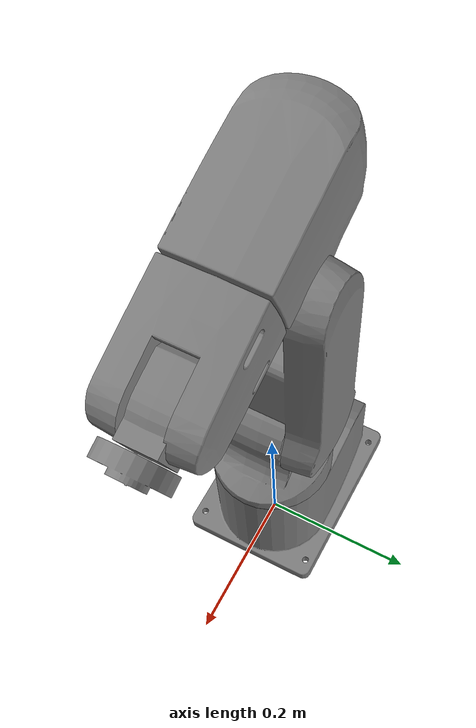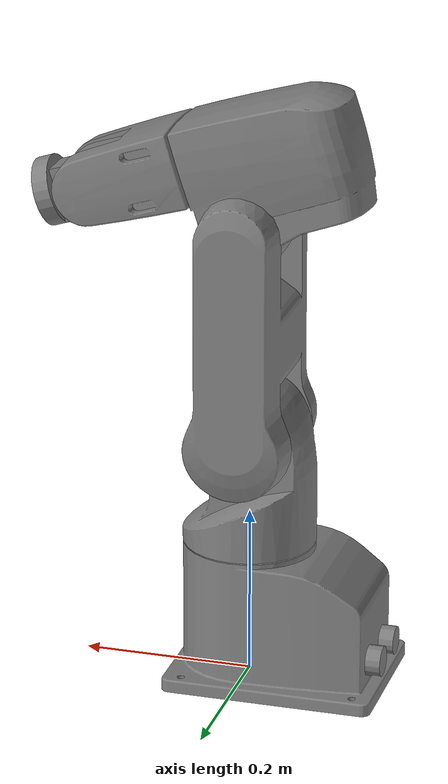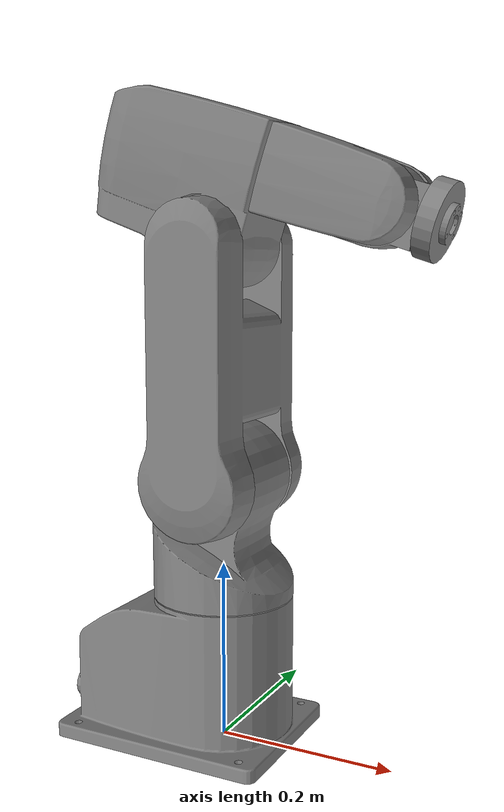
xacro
<?xml version="1.0"?>
<robot xmlns:xacro="http://www.ros.org/wiki/xacro" name="mrv1a">

    <!-- Enable setting arguments from the launch file -->
    <xacro:arg name="use_sim" default="false" />
    <xacro:arg name="use_fake_hardware" default="true" />
    <xacro:arg name="prefix" default="" />
    <xacro:arg name="robot_ip" default="192.168.122.200" />
    <xacro:arg name="robot_port" default="10000" />
    <xacro:arg name="initial_positions_file" default="initial_positions.yaml" />

    <!-- Import mrv1a urdf file -->
    <xacro:include filename="$(find mrv1a_description)/urdf/mrv1a.urdf.xacro" />

    <!-- Import mrv1a ros2_control description -->
    <xacro:include filename="$(find mrv1a_description)/ros2_control/mrv1a.r2c_hardware.xacro" />

    <!-- Import all Gazebo-customization elements -->
    <xacro:include filename="$(find mrv1a_description)/gazebo/mrv1a.gazebo"/>

    <!-- Used for fixing robot -->
    <link name="world"/>
    <gazebo reference="world">
        <static>true</static>
    </gazebo>

    <xacro:mrv1a parent="world" prefix="$(arg prefix)">
        <origin xyz="0 0 0" rpy="0 0 0" />
    </xacro:mrv1a>

    <xacro:mrv1a_r2c_hardware
        name="mrv1aRobot" prefix="$(arg prefix)"
        robot_ip="$(arg robot_ip)" robot_port="$(arg robot_port)"
        initial_positions_file="$(arg initial_positions_file)"
        use_sim="$(arg use_sim)" use_fake_hardware="$(arg use_fake_hardware)"
        />
</robot>

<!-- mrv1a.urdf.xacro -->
<robot xmlns:xacro="http://www.ros.org/wiki/xacro">

  <xacro:macro name="mrv1a" params="parent prefix *origin">

    <material name="gray">
      <color rgba="0.5 0.5 0.5 1.0"/>
    </material>

    <link name="${prefix}mrv1a_base">
        <visual>
          <origin rpy="0 0 0" xyz="0 0 0"/>
          <geometry>
            <mesh filename="package://mrv1a_description/meshes/body1_0.stl" scale="0.001 0.001 0.001"/>
          </geometry>
          <material name="gray"/>
        </visual>
        <collision>
          <origin rpy="0 0 0" xyz="0 0 0"/>
          <geometry>
            <mesh filename="package://mrv1a_description/meshes/body1_0.stl" scale="0.001 0.001 0.001"/>
          </geometry>
        </collision>
        <inertial>
            <mass value="1"/>
            <inertia ixx="1.0" ixy="0.0" ixz="0.0" iyy="1.0" iyz="0.0" izz="1.0"/>
        </inertial>
    </link>
    <link name="${prefix}link_1">
        <visual>
          <origin rpy="0 0 0" xyz="0 0 0"/>
          <geometry>
            <mesh filename="package://mrv1a_description/meshes/body1_1.stl" scale="0.001 0.001 0.001"/>
          </geometry>
          <material name="gray"/>
        </visual>
        <collision>
          <origin rpy="0 0 0" xyz="0 0 0"/>
          <geometry>
            <mesh filename="package://mrv1a_description/meshes/body1_1.stl" scale="0.001 0.001 0.001"/>
          </geometry>
        </collision>
        <inertial>
          <mass value="1"/>
          <inertia ixx="1.0" ixy="0.0" ixz="0.0" iyy="1.0" iyz="0.0" izz="1.0"/>
        </inertial>
    </link>
    <link name="${prefix}link_2">
        <visual>
          <origin rpy="0 0 -1.57" xyz="0 -0.25 0"/>
          <geometry>
            <mesh filename="package://mrv1a_description/meshes/body1_2.stl" scale="0.001 0.001 0.001"/>
          </geometry>
          <material name="gray"/>
        </visual>
        <collision>
          <origin rpy="0 0 -1.57" xyz="0 -0.25 0"/>
          <geometry>
            <mesh filename="package://mrv1a_description/meshes/body1_2.stl" scale="0.001 0.001 0.001"/>
          </geometry>
        </collision>
        <inertial>
          <mass value="1"/>
          <inertia ixx="1.0" ixy="0.0" ixz="0.0" iyy="1.0" iyz="0.0" izz="1.0"/>
        </inertial>
    </link>
    <link name="${prefix}link_3">
        <visual>
          <origin rpy="1.57 0 0" xyz="-0.09 0 0"/>
          <geometry>
            <mesh filename="package://mrv1a_description/meshes/body1_3.stl" scale="0.001 0.001 0.001"/>
          </geometry>
          <material name="gray"/>
        </visual>
        <collision>
          <origin rpy="1.57 0 0" xyz="-0.09 0 0"/>
          <geometry>
            <mesh filename="package://mrv1a_description/meshes/body1_3.stl" scale="0.001 0.001 0.001"/>
          </geometry>
        </collision>
        <inertial>
          <mass value="1"/>
          <inertia ixx="1.0" ixy="0.0" ixz="0.0" iyy="1.0" iyz="0.0" izz="1.0"/>
        </inertial>
    </link>
    <link name="${prefix}link_4">
        <visual>
          <origin rpy="-1.57 0 0" xyz="0 0 0"/>
          <geometry>
            <mesh filename="package://mrv1a_description/meshes/body1_4.stl" scale="0.001 0.001 0.001"/>
          </geometry>
          <material name="gray"/>
        </visual>
        <collision>
          <origin rpy="0 0 0" xyz="0 0 0"/>
          <geometry>
            <mesh filename="package://mrv1a_description/meshes/body1_4.stl" scale="0.001 0.001 0.001"/>
          </geometry>
        </collision>
        <inertial>
          <mass value="1"/>
          <inertia ixx="1.0" ixy="0.0" ixz="0.0" iyy="1.0" iyz="0.0" izz="1.0"/>
        </inertial>
    </link>
    <link name="${prefix}link_5">
        <visual>
          <origin rpy="1.57 0 0" xyz="0 0 0"/>
          <geometry>
            <mesh filename="package://mrv1a_description/meshes/body1_5.stl" scale="0.001 0.001 0.001"/>
          </geometry>
          <material name="gray"/>
        </visual>
        <collision>
          <origin rpy="0 0 0" xyz="0 0 0"/>
          <geometry>
            <mesh filename="package://mrv1a_description/meshes/body1_5.stl" scale="0.001 0.001 0.001"/>
          </geometry>
        </collision>
        <inertial>
          <mass value="1"/>
          <inertia ixx="1.0" ixy="0.0" ixz="0.0" iyy="1.0" iyz="0.0" izz="1.0"/>
        </inertial>
    </link>
    <link name="${prefix}link_6">
        <visual>
          <origin rpy="0 0 0" xyz="0 0 0"/>
          <geometry>
            <mesh filename="package://mrv1a_description/meshes/body1_6.stl" scale="0.001 0.001 0.001"/>
          </geometry>
          <material name="gray"/>
        </visual>
        <collision>
          <origin rpy="0 0 0" xyz="0 0 0"/>
          <geometry>
            <mesh filename="package://mrv1a_description/meshes/body1_6.stl" scale="0.001 0.001 0.001"/>
          </geometry>
        </collision>
        <inertial>
          <mass value="1"/>
          <inertia ixx="1.0" ixy="0.0" ixz="0.0" iyy="1.0" iyz="0.0" izz="1.0"/>
        </inertial>
    </link>
    <link name="${prefix}tool0">
      <inertial>
          <mass value="1"/>
          <inertia ixx="1.0" ixy="0.0" ixz="0.0" iyy="1.0" iyz="0.0" izz="1.0"/>
        </inertial>
    </link>

    <joint name="${prefix}mrv1a_base" type="fixed">
        <xacro:insert_block name="origin" />
        <parent link="${parent}"/>
        <child link="${prefix}mrv1a_base"/>
    </joint>

    <joint name="${prefix}joint_a1" type="revolute">
        <origin rpy="-1.57 0 0" xyz="0 0 0.3"/>
        <parent link="${prefix}mrv1a_base"/>
        <child link="${prefix}link_1"/>
        <axis xyz="0 -1 0"/>
        <limit effort="1000" lower="-2.62" upper="2.62" velocity="3.14"/>
        <dynamics damping="0.0" friction="0.0"/>
    </joint>
    <joint name="${prefix}joint_a2" type="revolute">
        <origin rpy="0 0 0" xyz="0 0 0"/>
        <parent link="${prefix}link_1"/>
        <child link="${prefix}link_2"/>
        <axis xyz="0 0 1"/>
        <limit effort="1000" lower="-1.05" upper="2.0942" velocity="1.57"/>
        <dynamics damping="0.0" friction="0.0"/>
    </joint>
    <joint name="${prefix}joint_a3" type="revolute">
        <origin rpy="0 0 0" xyz="0 -0.25 0"/>
        <parent link="${prefix}link_2"/>
        <child link="${prefix}link_3"/>
        <axis xyz="0 0 1"/>
        <limit effort="1000" lower="1.05" upper="2.71" velocity="2.36"/>
        <dynamics damping="0.0" friction="0.0"/>
    </joint>
    <joint name="${prefix}joint_a4" type="revolute">
        <origin rpy="1.57 0 0" xyz="-0.09 -0.16 0"/>
        <parent link="${prefix}link_3"/>
        <child link="${prefix}link_4"/>
        <axis xyz="0 0 1"/>
        <limit effort="1000" lower="-2.79" upper="2.79" velocity="3.14"/>
        <dynamics damping="0.0" friction="0.0"/>
    </joint>
    <joint name="${prefix}joint_a5" type="revolute">
        <origin rpy="-1.57 0 0" xyz="0 0 0"/>
        <parent link="${prefix}link_4"/>
        <child link="${prefix}link_5"/>
        <axis xyz="0 0 1"/>
        <limit effort="1000" lower="-1.57" upper="1.57" velocity="3.14"/>
        <dynamics damping="0.0" friction="0.0"/>
    </joint>
    <joint name="${prefix}joint_a6" type="revolute">
        <origin rpy="1.57 0 0" xyz="0 -0.072 0"/>
        <parent link="${prefix}link_5"/>
        <child link="${prefix}link_6"/>
        <axis xyz="0 0 1"/>
        <limit effort="1000" lower="-3.49" upper="3.49" velocity="3.67"/>
        <dynamics damping="0.0" friction="0.0"/>
    </joint>
    <joint name="${prefix}joint_a6-tool0" type="fixed">
        <origin rpy="0 0 0" xyz="0 0 0"/>
        <parent link="${prefix}link_6"/>
        <child link="${prefix}tool0"/>
    </joint>

  </xacro:macro>
</robot>
